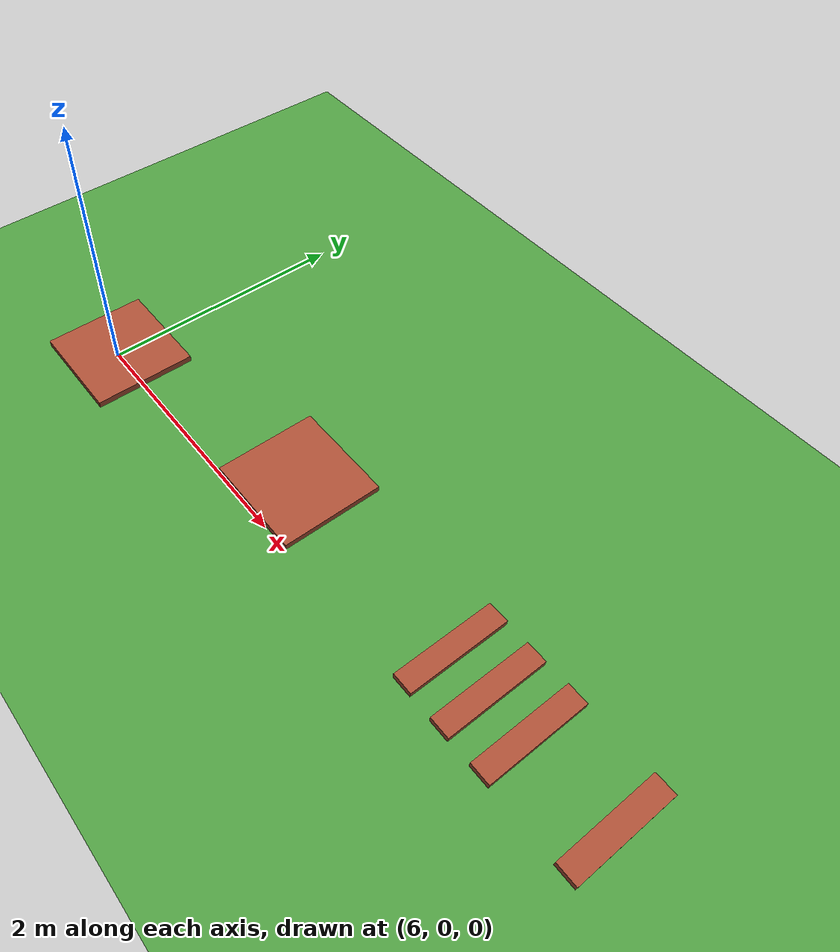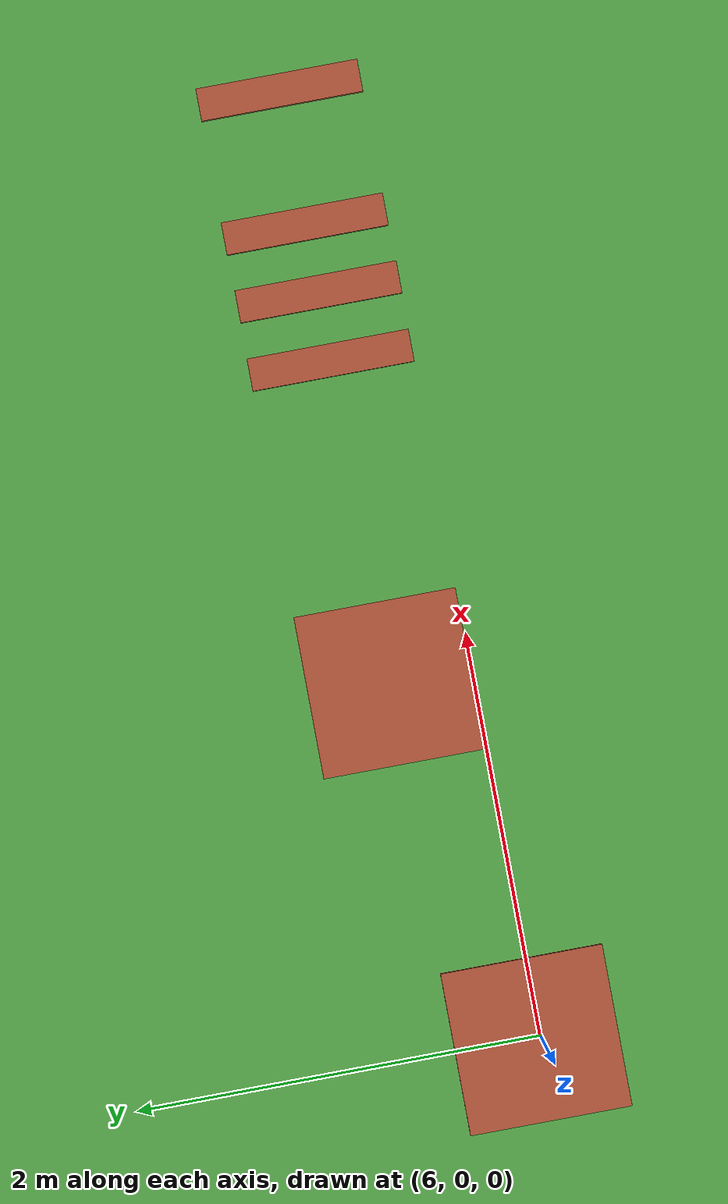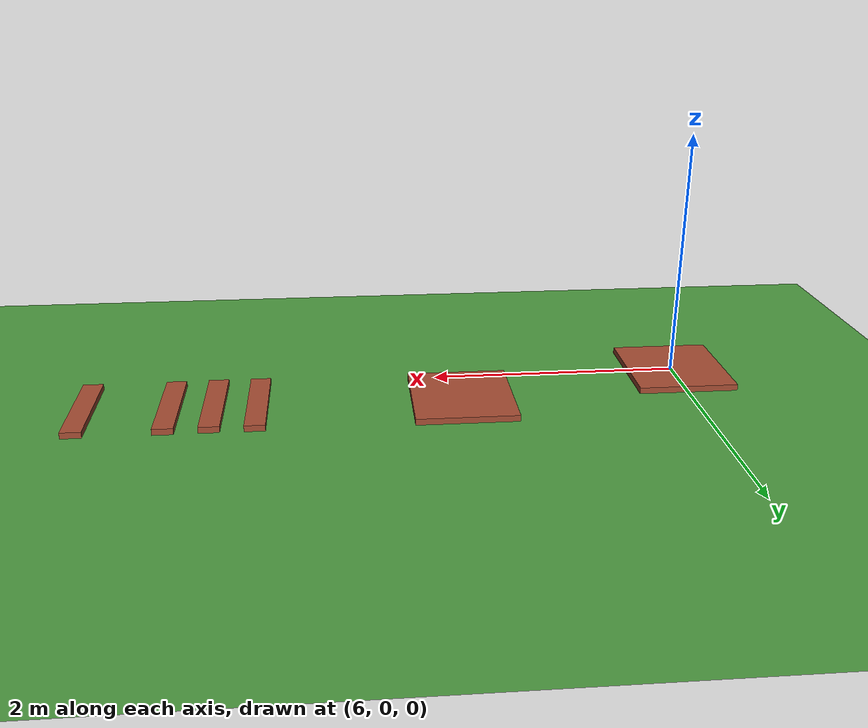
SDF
<sdf version="1.6">
 <world name="default">
  <model name="ground_plane">
   <static>1</static>
   <link name="link">
    <collision name="collision">
     <geometry><plane><normal>0 0 1</normal><size>100 100</size></plane></geometry>
     <surface>
      <contact><collide_bitmask>65535</collide_bitmask></contact>
      <friction><ode><mu>100</mu><mu2>50</mu2></ode></friction>
     </surface>
    </collision>
    <visual name="visual">
     <cast_shadows>0</cast_shadows>
     <geometry><plane><normal>0 0 1</normal><size>100 100</size></plane></geometry>
     <material>
      <script><uri>file://media/materials/scripts/gazebo.material</uri><name>Gazebo/Grass</name></script>
     </material>
    </visual>
   </link>
  </model>
  <model name="terrain_box_5cm_0_clone_0">
   <link name="link">
    <inertial>
     <mass>10</mass>
     <inertia><ixx>1.66667</ixx><ixy>0</ixy><ixz>0</ixz><iyy>1.66667</iyy><iyz>0</iyz><izz>1.66667</izz></inertia>
    </inertial>
    <sensor name="test" type="contact">
     <always_on>1</always_on>
     <update_rate>200</update_rate>
     <visualize>1</visualize>
     <contact><collision>collision</collision><topic>__default_topic__</topic></contact>
    </sensor>
    <visual name="visual">
     <geometry><box><size>0.8 0.8 0.05</size></box></geometry>
     <material>
      <script><name>Gazebo/Bricks</name><uri>file://media/materials/scripts/gazebo.material</uri></script>
      <shader type="vertex"><normal_map>__default__</normal_map></shader>
      <ambient>0.3 0.3 0.3 1</ambient>
      <diffuse>0.7 0.7 0.7 1</diffuse>
      <specular>0.01 0.01 0.01 1</specular>
      <emissive>0 0 0 1</emissive>
     </material>
    </visual>
    <collision name="collision">
     <geometry><box><size>0.8 0.8 0.05</size></box></geometry>
     <surface>
      <friction>
       <ode><mu>1</mu><mu2>1</mu2><fdir1>0 0 0</fdir1><slip1>0</slip1><slip2>0</slip2></ode>
       <torsional>
        <coefficient>1</coefficient>
        <patch_radius>0</patch_radius>
        <surface_radius>0</surface_radius>
        <use_patch_radius>1</use_patch_radius>
        <ode><slip>0</slip></ode>
       </torsional>
      </friction>
      <bounce><restitution_coefficient>0</restitution_coefficient><threshold>1e+06</threshold></bounce>
      <contact>
       <collide_without_contact>0</collide_without_contact>
       <collide_without_contact_bitmask>1</collide_without_contact_bitmask>
       <collide_bitmask>1</collide_bitmask>
       <ode>
        <soft_cfm>0</soft_cfm>
        <soft_erp>0.2</soft_erp>
        <kp>1e+13</kp>
        <kd>1</kd>
        <max_vel>0.01</max_vel>
        <min_depth>0.001</min_depth>
       </ode>
       <bullet>
        <split_impulse>1</split_impulse>
        <split_impulse_penetration_threshold>-0.01</split_impulse_penetration_threshold>
        <soft_cfm>0</soft_cfm>
        <soft_erp>0.2</soft_erp>
        <kp>1e+13</kp>
        <kd>1</kd>
       </bullet>
      </contact>
     </surface>
    </collision>
   </link>
   <static>1</static>
   <pose>5.99005 0.025547 0.024797 0 -0 0</pose>
  </model>
  <model name="terrain_box_5cm_0_clone_0_clone_0">
   <link name="link">
    <inertial>
     <mass>10</mass>
     <inertia><ixx>1.66667</ixx><ixy>0</ixy><ixz>0</ixz><iyy>1.66667</iyy><iyz>0</iyz><izz>1.66667</izz></inertia>
    </inertial>
    <sensor name="test" type="contact">
     <always_on>1</always_on>
     <update_rate>200</update_rate>
     <visualize>1</visualize>
     <contact><collision>collision</collision><topic>__default_topic__</topic></contact>
    </sensor>
    <visual name="visual">
     <geometry><box><size>0.8 0.8 0.05</size></box></geometry>
     <material>
      <script><name>Gazebo/Bricks</name><uri>file://media/materials/scripts/gazebo.material</uri></script>
      <shader type="vertex"><normal_map>__default__</normal_map></shader>
      <ambient>0.3 0.3 0.3 1</ambient>
      <diffuse>0.7 0.7 0.7 1</diffuse>
      <specular>0.01 0.01 0.01 1</specular>
      <emissive>0 0 0 1</emissive>
     </material>
    </visual>
    <collision name="collision">
     <geometry><box><size>0.8 0.8 0.05</size></box></geometry>
     <surface>
      <friction>
       <ode><mu>1</mu><mu2>1</mu2><fdir1>0 0 0</fdir1><slip1>0</slip1><slip2>0</slip2></ode>
       <torsional>
        <coefficient>1</coefficient>
        <patch_radius>0</patch_radius>
        <surface_radius>0</surface_radius>
        <use_patch_radius>1</use_patch_radius>
        <ode><slip>0</slip></ode>
       </torsional>
      </friction>
      <bounce><restitution_coefficient>0</restitution_coefficient><threshold>1e+06</threshold></bounce>
      <contact>
       <collide_without_contact>0</collide_without_contact>
       <collide_without_contact_bitmask>1</collide_without_contact_bitmask>
       <collide_bitmask>1</collide_bitmask>
       <ode>
        <soft_cfm>0</soft_cfm>
        <soft_erp>0.2</soft_erp>
        <kp>1e+13</kp>
        <kd>1</kd>
        <max_vel>0.01</max_vel>
        <min_depth>0.001</min_depth>
       </ode>
       <bullet>
        <split_impulse>1</split_impulse>
        <split_impulse_penetration_threshold>-0.01</split_impulse_penetration_threshold>
        <soft_cfm>0</soft_cfm>
        <soft_erp>0.2</soft_erp>
        <kp>1e+13</kp>
        <kd>1</kd>
       </bullet>
      </contact>
     </surface>
    </collision>
   </link>
   <static>1</static>
   <pose>7.82718 0.409365 0.024797 0 -0 0</pose>
  </model>
  <model name="terrain_step_5cm_0_clone_0">
   <link name="link">
    <inertial>
     <mass>10</mass>
     <inertia><ixx>1.66667</ixx><ixy>0</ixy><ixz>0</ixz><iyy>1.66667</iyy><iyz>0</iyz><izz>1.66667</izz></inertia>
    </inertial>
    <sensor name="test" type="contact">
     <always_on>1</always_on>
     <update_rate>200</update_rate>
     <visualize>1</visualize>
     <contact><collision>collision</collision><topic>__default_topic__</topic></contact>
    </sensor>
    <visual name="visual">
     <geometry><box><size>0.16 0.8 0.05</size></box></geometry>
     <material>
      <script><name>Gazebo/Bricks</name><uri>file://media/materials/scripts/gazebo.material</uri></script>
      <shader type="vertex"><normal_map>__default__</normal_map></shader>
      <ambient>0.3 0.3 0.3 1</ambient>
      <diffuse>0.7 0.7 0.7 1</diffuse>
      <specular>0.01 0.01 0.01 1</specular>
      <emissive>0 0 0 1</emissive>
     </material>
    </visual>
    <collision name="collision">
     <geometry><box><size>0.16 0.8 0.05</size></box></geometry>
     <surface>
      <friction>
       <ode><mu>1</mu><mu2>1</mu2><fdir1>0 0 0</fdir1><slip1>0</slip1><slip2>0</slip2></ode>
       <torsional>
        <coefficient>1</coefficient>
        <patch_radius>0</patch_radius>
        <surface_radius>0</surface_radius>
        <use_patch_radius>1</use_patch_radius>
        <ode><slip>0</slip></ode>
       </torsional>
      </friction>
      <bounce><restitution_coefficient>0</restitution_coefficient><threshold>1e+06</threshold></bounce>
      <contact>
       <collide_without_contact>0</collide_without_contact>
       <collide_without_contact_bitmask>1</collide_without_contact_bitmask>
       <collide_bitmask>1</collide_bitmask>
       <ode>
        <soft_cfm>0</soft_cfm>
        <soft_erp>0.2</soft_erp>
        <kp>1e+13</kp>
        <kd>1</kd>
        <max_vel>0.01</max_vel>
        <min_depth>0.001</min_depth>
       </ode>
       <bullet>
        <split_impulse>1</split_impulse>
        <split_impulse_penetration_threshold>-0.01</split_impulse_penetration_threshold>
        <soft_cfm>0</soft_cfm>
        <soft_erp>0.2</soft_erp>
        <kp>1e+13</kp>
        <kd>1</kd>
       </bullet>
      </contact>
     </surface>
    </collision>
   </link>
   <static>1</static>
   <pose>9.42746 0.402644 0.020814 0 -0 0</pose>
  </model>
  <model name="terrain_step_5cm_0_clone_2">
   <link name="link">
    <inertial>
     <mass>10</mass>
     <inertia><ixx>1.66667</ixx><ixy>0</ixy><ixz>0</ixz><iyy>1.66667</iyy><iyz>0</iyz><izz>1.66667</izz></inertia>
    </inertial>
    <sensor name="test" type="contact">
     <always_on>1</always_on>
     <update_rate>200</update_rate>
     <visualize>1</visualize>
     <contact><collision>collision</collision><topic>__default_topic__</topic></contact>
    </sensor>
    <visual name="visual">
     <geometry><box><size>0.16 0.8 0.05</size></box></geometry>
     <material>
      <script><name>Gazebo/Bricks</name><uri>file://media/materials/scripts/gazebo.material</uri></script>
      <shader type="vertex"><normal_map>__default__</normal_map></shader>
      <ambient>0.3 0.3 0.3 1</ambient>
      <diffuse>0.7 0.7 0.7 1</diffuse>
      <specular>0.01 0.01 0.01 1</specular>
      <emissive>0 0 0 1</emissive>
     </material>
    </visual>
    <collision name="collision">
     <geometry><box><size>0.16 0.8 0.05</size></box></geometry>
     <surface>
      <friction>
       <ode><mu>1</mu><mu2>1</mu2><fdir1>0 0 0</fdir1><slip1>0</slip1><slip2>0</slip2></ode>
       <torsional>
        <coefficient>1</coefficient>
        <patch_radius>0</patch_radius>
        <surface_radius>0</surface_radius>
        <use_patch_radius>1</use_patch_radius>
        <ode><slip>0</slip></ode>
       </torsional>
      </friction>
      <bounce><restitution_coefficient>0</restitution_coefficient><threshold>1e+06</threshold></bounce>
      <contact>
       <collide_without_contact>0</collide_without_contact>
       <collide_without_contact_bitmask>1</collide_without_contact_bitmask>
       <collide_bitmask>1</collide_bitmask>
       <ode>
        <soft_cfm>0</soft_cfm>
        <soft_erp>0.2</soft_erp>
        <kp>1e+13</kp>
        <kd>1</kd>
        <max_vel>0.01</max_vel>
        <min_depth>0.001</min_depth>
       </ode>
       <bullet>
        <split_impulse>1</split_impulse>
        <split_impulse_penetration_threshold>-0.01</split_impulse_penetration_threshold>
        <soft_cfm>0</soft_cfm>
        <soft_erp>0.2</soft_erp>
        <kp>1e+13</kp>
        <kd>1</kd>
       </bullet>
      </contact>
     </surface>
    </collision>
   </link>
   <static>1</static>
   <pose>9.76574 0.399919 0.020814 0 -0 0</pose>
  </model>
  <model name="terrain_step_5cm_0_clone_4">
   <link name="link">
    <inertial>
     <mass>10</mass>
     <inertia><ixx>1.66667</ixx><ixy>0</ixy><ixz>0</ixz><iyy>1.66667</iyy><iyz>0</iyz><izz>1.66667</izz></inertia>
    </inertial>
    <sensor name="test" type="contact">
     <always_on>1</always_on>
     <update_rate>200</update_rate>
     <visualize>1</visualize>
     <contact><collision>collision</collision><topic>__default_topic__</topic></contact>
    </sensor>
    <visual name="visual">
     <geometry><box><size>0.16 0.8 0.05</size></box></geometry>
     <material>
      <script><name>Gazebo/Bricks</name><uri>file://media/materials/scripts/gazebo.material</uri></script>
      <shader type="vertex"><normal_map>__default__</normal_map></shader>
      <ambient>0.3 0.3 0.3 1</ambient>
      <diffuse>0.7 0.7 0.7 1</diffuse>
      <specular>0.01 0.01 0.01 1</specular>
      <emissive>0 0 0 1</emissive>
     </material>
    </visual>
    <collision name="collision">
     <geometry><box><size>0.16 0.8 0.05</size></box></geometry>
     <surface>
      <friction>
       <ode><mu>1</mu><mu2>1</mu2><fdir1>0 0 0</fdir1><slip1>0</slip1><slip2>0</slip2></ode>
       <torsional>
        <coefficient>1</coefficient>
        <patch_radius>0</patch_radius>
        <surface_radius>0</surface_radius>
        <use_patch_radius>1</use_patch_radius>
        <ode><slip>0</slip></ode>
       </torsional>
      </friction>
      <bounce><restitution_coefficient>0</restitution_coefficient><threshold>1e+06</threshold></bounce>
      <contact>
       <collide_without_contact>0</collide_without_contact>
       <collide_without_contact_bitmask>1</collide_without_contact_bitmask>
       <collide_bitmask>1</collide_bitmask>
       <ode>
        <soft_cfm>0</soft_cfm>
        <soft_erp>0.2</soft_erp>
        <kp>1e+13</kp>
        <kd>1</kd>
        <max_vel>0.01</max_vel>
        <min_depth>0.001</min_depth>
       </ode>
       <bullet>
        <split_impulse>1</split_impulse>
        <split_impulse_penetration_threshold>-0.01</split_impulse_penetration_threshold>
        <soft_cfm>0</soft_cfm>
        <soft_erp>0.2</soft_erp>
        <kp>1e+13</kp>
        <kd>1</kd>
       </bullet>
      </contact>
     </surface>
    </collision>
   </link>
   <static>1</static>
   <pose>10.1031 0.404632 0.020814 0 -0 0</pose>
  </model>
  <model name="terrain_step_5cm_0_clone_8">
   <link name="link">
    <inertial>
     <mass>10</mass>
     <inertia><ixx>1.66667</ixx><ixy>0</ixy><ixz>0</ixz><iyy>1.66667</iyy><iyz>0</iyz><izz>1.66667</izz></inertia>
    </inertial>
    <sensor name="test" type="contact">
     <always_on>1</always_on>
     <update_rate>200</update_rate>
     <visualize>1</visualize>
     <contact><collision>collision</collision><topic>__default_topic__</topic></contact>
    </sensor>
    <visual name="visual">
     <geometry><box><size>0.16 0.8 0.05</size></box></geometry>
     <material>
      <script><name>Gazebo/Bricks</name><uri>file://media/materials/scripts/gazebo.material</uri></script>
      <shader type="vertex"><normal_map>__default__</normal_map></shader>
      <ambient>0.3 0.3 0.3 1</ambient>
      <diffuse>0.7 0.7 0.7 1</diffuse>
      <specular>0.01 0.01 0.01 1</specular>
      <emissive>0 0 0 1</emissive>
     </material>
    </visual>
    <collision name="collision">
     <geometry><box><size>0.16 0.8 0.05</size></box></geometry>
     <surface>
      <friction>
       <ode><mu>1</mu><mu2>1</mu2><fdir1>0 0 0</fdir1><slip1>0</slip1><slip2>0</slip2></ode>
       <torsional>
        <coefficient>1</coefficient>
        <patch_radius>0</patch_radius>
        <surface_radius>0</surface_radius>
        <use_patch_radius>1</use_patch_radius>
        <ode><slip>0</slip></ode>
       </torsional>
      </friction>
      <bounce><restitution_coefficient>0</restitution_coefficient><threshold>1e+06</threshold></bounce>
      <contact>
       <collide_without_contact>0</collide_without_contact>
       <collide_without_contact_bitmask>1</collide_without_contact_bitmask>
       <collide_bitmask>1</collide_bitmask>
       <ode>
        <soft_cfm>0</soft_cfm>
        <soft_erp>0.2</soft_erp>
        <kp>1e+13</kp>
        <kd>1</kd>
        <max_vel>0.01</max_vel>
        <min_depth>0.001</min_depth>
       </ode>
       <bullet>
        <split_impulse>1</split_impulse>
        <split_impulse_penetration_threshold>-0.01</split_impulse_penetration_threshold>
        <soft_cfm>0</soft_cfm>
        <soft_erp>0.2</soft_erp>
        <kp>1e+13</kp>
        <kd>1</kd>
       </bullet>
      </contact>
     </surface>
    </collision>
   </link>
   <static>1</static>
   <pose>10.7674 0.406824 0.020814 0 -0 0</pose>
  </model>
 </world>
</sdf>
